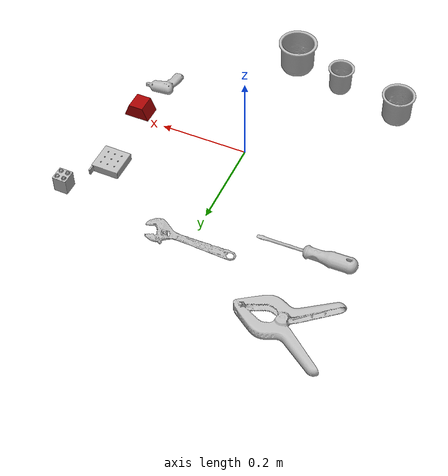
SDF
<?xml version="1.0" ?>
<sdf version="1.4">
  <world name="default">
    <light name="light1" type="point">
      <pose>0 0 1 0 0 0</pose>
      <diffuse>3 3 3 1</diffuse>
      <specular>3 3 3 1</specular>
    </light>
    <light name="light2" type="point">
      <pose>0 0.5 2 0 0 0</pose>
      <diffuse>1 1 1 1</diffuse>
      <specular>1 1 1 1</specular>
    </light>
    <light name="light3" type="point">
      <pose>0 0.5 2 0 0 0</pose>
      <diffuse>3 3 3 1</diffuse>
      <specular>3 3 3 1</specular>
    </light>
    <scene>
      <ambient>0.7 0.7 0.7</ambient>
    </scene>
    <model name="cup1">
      <link name="link_cup1">
        <collision name="default">
          <geometry>
            <mesh>
              <uri>model://b_cups/collision_meshes/collision.obj</uri>
              <scale>1.0 1.0 1.0</scale>
            </mesh>
          </geometry>
          <surface>
            <friction>
              <ode>
                <mu>0.5</mu>
                <mu2>0.5</mu2>
              </ode>
            </friction>
          </surface>
        </collision>
        <visual name="default">
          <geometry>
            <mesh>
              <uri>model://b_cups/visual_meshes/visual.dae</uri>
              <scale>1.0 1.0 1.0</scale>
            </mesh>
          </geometry>
        </visual>
        <inertial>
          <mass>0.03190340846776962</mass>
          <pose>0.0005182004533708096 0.0018058607820421457 -0.0013381806202232838 0.11356328214070865 0.03872483993123738 -0.34569243052877063</pose>
          <inertia>
            <ixx>2.0883017e-05</ixx>
            <iyy>2.0486541e-05</iyy>
            <izz>1.7572664e-05</izz>
            <ixy>0</ixy>
            <ixz>0</ixz>
            <iyz>0</iyz>
          </inertia>
        </inertial>
      </link>
      <pose>-0.1200605034828186 -0.27974212169647217 0.03199608623981476 -0.0076289622394364225 -0.003829541061900972 2.0199337755721982e-05</pose>
    </model>
    <model name="cup2">
      <link name="link_cup2">
        <collision name="default">
          <geometry>
            <mesh>
              <uri>model://e_cups/collision_meshes/collision.obj</uri>
              <scale>1.0 1.0 1.0</scale>
            </mesh>
          </geometry>
          <surface>
            <friction>
              <ode>
                <mu>0.5</mu>
                <mu2>0.5</mu2>
              </ode>
            </friction>
          </surface>
        </collision>
        <visual name="default">
          <geometry>
            <mesh>
              <uri>model://e_cups/visual_meshes/visual.dae</uri>
              <scale>1.0 1.0 1.0</scale>
            </mesh>
          </geometry>
        </visual>
        <inertial>
          <mass>0.09350046515464783</mass>
          <pose>0.0011355748865753412 0.0028797851409763098 -0.0038829720579087734 0.69524087765449 0.08767898447354379 -0.5235249697507389</pose>
          <inertia>
            <ixx>8.2444014e-05</ixx>
            <iyy>8.6165805e-05</iyy>
            <izz>7.882601e-05</izz>
            <ixy>0</ixy>
            <ixz>0</ixz>
            <iyz>0</iyz>
          </inertia>
        </inertial>
      </link>
      <pose>-0.2700028717517853 -0.23992539942264557 0.03559990972280502 5.312821778423163e-05 -6.698071450151837e-05 1.0625412298269384e-07</pose>
    </model>
    <model name="cup3">
      <link name="link_cup3">
        <collision name="default">
          <geometry>
            <mesh>
              <uri>model://h_cups/collision_meshes/collision.obj</uri>
              <scale>1.0 1.0 1.0</scale>
            </mesh>
          </geometry>
          <surface>
            <friction>
              <ode>
                <mu>0.5</mu>
                <mu2>0.5</mu2>
              </ode>
            </friction>
          </surface>
        </collision>
        <visual name="default">
          <geometry>
            <mesh>
              <uri>model://h_cups/visual_meshes/visual.dae</uri>
              <scale>1.0 1.0 1.0</scale>
            </mesh>
          </geometry>
        </visual>
        <inertial>
          <mass>0.05626832693815231</mass>
          <pose>-2.7024709197576158e-05 0.00023018589126877487 -0.0018405396258458495 -0.02436208446622447 0.06545190020339471 0.12885609358770897</pose>
          <inertia>
            <ixx>7.2667885e-05</ixx>
            <iyy>7.180077e-05</iyy>
            <izz>7.620872e-05</izz>
            <ixy>0</ixy>
            <ixz>0</ixz>
            <iyz>0</iyz>
          </inertia>
        </inertial>
      </link>
      <pose>-6.100736209191382e-05 -0.3100005090236664 0.0377579890191555 1.0710214978781894e-08 -4.0046869272114545e-08 -2.6822090170371644e-07</pose>
    </model>
    <model name="toy1">
      <link name="link_toy1">
        <collision name="default">
          <geometry>
            <mesh>
              <uri>model://nine_hole_peg_test/collision_meshes/collision.obj</uri>
              <scale>0.5 0.5 0.5</scale>
            </mesh>
          </geometry>
          <surface>
            <friction>
              <ode>
                <mu>0.5</mu>
                <mu2>0.5</mu2>
              </ode>
            </friction>
          </surface>
        </collision>
        <visual name="default">
          <geometry>
            <mesh>
              <uri>model://nine_hole_peg_test/visual_meshes/visual.dae</uri>
              <scale>0.5 0.5 0.5</scale>
            </mesh>
          </geometry>
        </visual>
        <inertial>
          <mass>0.06318242102861404</mass>
          <pose>-0.0023086941801011562 -0.004823808092623949 1.3230346667114645e-05 -0.0014666789322941463 0.0007194184826049595 -0.6342412444031488</pose>
          <inertia>
            <ixx>2.4699024e-05</ixx>
            <iyy>2.3061213e-05</iyy>
            <izz>4.327997e-05</izz>
            <ixy>0</ixy>
            <ixz>0</ixz>
            <iyz>0</iyz>
          </inertia>
        </inertial>
      </link>
      <pose>0.25123974680900574 0.15876854956150055 0.010385502129793167 6.635672948608619e-09 3.3178354855366816e-09 2.3841263897601334e-07</pose>
    </model>
    <model name="toy2">
      <link name="link_toy2">
        <collision name="default">
          <geometry>
            <mesh>
              <uri>model://prism/collision_meshes/collision.obj</uri>
              <scale>0.5 0.5 0.5</scale>
            </mesh>
          </geometry>
          <surface>
            <friction>
              <ode>
                <mu>0.5</mu>
                <mu2>0.5</mu2>
              </ode>
            </friction>
          </surface>
        </collision>
        <visual name="default">
          <geometry>
            <mesh>
              <uri>model://prism/visual_meshes/visual.dae</uri>
              <scale>0.5 0.5 0.5</scale>
            </mesh>
          </geometry>
        </visual>
        <inertial>
          <mass>0.058882199227809906</mass>
          <pose>-4.92679828312248e-05 -2.480786349678965e-07 -0.0016934550367295742 0.0 0.00655918030046738 0.0</pose>
          <inertia>
            <ixx>1.32851155e-05</ixx>
            <iyy>1.6055232e-05</iyy>
            <izz>1.9665738e-05</izz>
            <ixy>0</ixy>
            <ixz>0</ixz>
            <iyz>0</iyz>
          </inertia>
        </inertial>
      </link>
      <pose>0.27000001072883606 -0.019999772310256958 0.016084996983408928 1.9627172451609234e-08 -2.7939700021246316e-09 2.3215551434064305e-07</pose>
    </model>
    <model name="toy3">
      <link name="link_toy3">
        <collision name="default">
          <geometry>
            <mesh>
              <uri>model://b_toy_airplane/collision_meshes/collision.obj</uri>
              <scale>0.5 0.5 0.5</scale>
            </mesh>
          </geometry>
          <surface>
            <friction>
              <ode>
                <mu>0.5</mu>
                <mu2>0.5</mu2>
              </ode>
            </friction>
          </surface>
        </collision>
        <visual name="default">
          <geometry>
            <mesh>
              <uri>model://b_toy_airplane/visual_meshes/visual.dae</uri>
              <scale>0.5 0.5 0.5</scale>
            </mesh>
          </geometry>
        </visual>
        <inertial>
          <mass>0.06070837751030922</mass>
          <pose>0.002540682442486286 0.0020077924709767103 0.0047715334221720695 -0.040018114249042835 -0.04022179473329346 -0.5601502235260123</pose>
          <inertia>
            <ixx>2.8176557e-05</ixx>
            <iyy>1.1262445e-05</iyy>
            <izz>3.5054447e-05</izz>
            <ixy>0</ixy>
            <ixz>0</ixz>
            <iyz>0</iyz>
          </inertia>
        </inertial>
      </link>
      <pose>0.24741403758525848 -0.11308487504720688 0.008488940075039864 0.18487651739508232 0.11349927468816032 0.008537776975594642</pose>
    </model>
    <model name="toy4">
      <link name="link_toy4">
        <collision name="default">
          <geometry>
            <mesh>
              <uri>model://f_lego_duplo/collision_meshes/collision.obj</uri>
              <scale>1.0 1.0 1.0</scale>
            </mesh>
          </geometry>
          <surface>
            <friction>
              <ode>
                <mu>0.5</mu>
                <mu2>0.5</mu2>
              </ode>
            </friction>
          </surface>
        </collision>
        <visual name="default">
          <geometry>
            <mesh>
              <uri>model://f_lego_duplo/visual_meshes/visual.dae</uri>
              <scale>1.0 1.0 1.0</scale>
            </mesh>
          </geometry>
        </visual>
        <inertial>
          <mass>0.029542475938796997</mass>
          <pose>2.369392677792348e-05 0.00013393184053711593 0.0018837879179045558 0.029838766168002753 -0.014424835911361083 -0.6756712748416152</pose>
          <inertia>
            <ixx>6.2424897e-06</ixx>
            <iyy>6.2981026e-06</iyy>
            <izz>5.4187462e-06</izz>
            <ixy>0</ixy>
            <ixz>0</ixz>
            <iyz>0</iyz>
          </inertia>
        </inertial>
      </link>
      <pose>0.31000906229019165 0.2499384731054306 0.021870985627174377 7.80914165351033e-07 2.0802838230211763e-06 -0.0004475484452404182</pose>
    </model>
    <model name="hardware1">
      <link name="link_hardware1">
        <collision name="default">
          <geometry>
            <mesh>
              <uri>model://extra_large_clamp/collision_meshes/collision.obj</uri>
              <scale>1.0 1.0 1.0</scale>
            </mesh>
          </geometry>
          <surface>
            <friction>
              <ode>
                <mu>0.5</mu>
                <mu2>0.5</mu2>
              </ode>
            </friction>
          </surface>
        </collision>
        <visual name="default">
          <geometry>
            <mesh>
              <uri>model://extra_large_clamp/visual_meshes/visual.dae</uri>
              <scale>1.0 1.0 1.0</scale>
            </mesh>
          </geometry>
        </visual>
        <inertial>
          <mass>0.20469266176223755</mass>
          <pose>0.00323202065192163 -7.615445792907849e-05 0.0003172155993524939 0.013786991356050505 -0.0005066836095273004 -0.000893628832478523</pose>
          <inertia>
            <ixx>0.00031109934</ixx>
            <iyy>0.0005356169</iyy>
            <izz>0.00081831246</izz>
            <ixy>0</ixy>
            <ixz>0</ixz>
            <iyz>0</iyz>
          </inertia>
        </inertial>
      </link>
      <pose>-0.24974402785301208 0.39166077971458435 0.018067503347992897 -0.024375255405464733 3.465335031785844e-05 6.646320295670257e-05</pose>
    </model>
    <model name="hardware2">
      <link name="link_hardware2">
        <collision name="default">
          <geometry>
            <mesh>
              <uri>model://flat_screwdriver/collision_meshes/collision.obj</uri>
              <scale>1.0 1.0 1.0</scale>
            </mesh>
          </geometry>
          <surface>
            <friction>
              <ode>
                <mu>0.5</mu>
                <mu2>0.5</mu2>
              </ode>
            </friction>
          </surface>
        </collision>
        <visual name="default">
          <geometry>
            <mesh>
              <uri>model://flat_screwdriver/visual_meshes/visual.dae</uri>
              <scale>1.0 1.0 1.0</scale>
            </mesh>
          </geometry>
        </visual>
        <inertial>
          <mass>0.09510745853185654</mass>
          <pose>-0.048918697983026505 -0.0006576799787580967 -0.000614091579336673 -0.5614762322958965 -0.003233723970645699 0.006982278511552064</pose>
          <inertia>
            <ixx>1.1236876e-05</ixx>
            <iyy>0.00014265477</iyy>
            <izz>0.00014258873</izz>
            <ixy>0</ixy>
            <ixz>0</ixz>
            <iyz>0</iyz>
          </inertia>
        </inertial>
      </link>
      <pose>-0.23102609813213348 0.21419307589530945 0.015338591299951077 -0.21441250784810179 0.040695435157886525 -0.007387033562269629</pose>
    </model>
    <model name="hardware3">
      <link name="link_hardware3">
        <collision name="default">
          <geometry>
            <mesh>
              <uri>model://adjustable_wrench/collision_meshes/collision.obj</uri>
              <scale>1.0 1.0 1.0</scale>
            </mesh>
          </geometry>
          <surface>
            <friction>
              <ode>
                <mu>0.5</mu>
                <mu2>0.5</mu2>
              </ode>
            </friction>
          </surface>
        </collision>
        <visual name="default">
          <geometry>
            <mesh>
              <uri>model://adjustable_wrench/visual_meshes/visual.dae</uri>
              <scale>1.0 1.0 1.0</scale>
            </mesh>
          </geometry>
        </visual>
        <inertial>
          <mass>0.02741360291838646</mass>
          <pose>0.03740980476140976 -0.002896887017413974 -0.0011149230413138866 -0.0144733350781748 0.006656025939833136 -0.010954202845362587</pose>
          <inertia>
            <ixx>5.610589e-06</ixx>
            <iyy>6.5665416e-05</iyy>
            <izz>7.0977985e-05</izz>
            <ixy>0</ixy>
            <ixz>0</ixz>
            <iyz>0</iyz>
          </inertia>
        </inertial>
      </link>
      <pose>0.0036364495754241943 0.28085169196128845 0.006125037558376789 0.04675912812620563 -0.029270644218733752 -0.0006226678863352463</pose>
    </model>
  </world>
</sdf>
